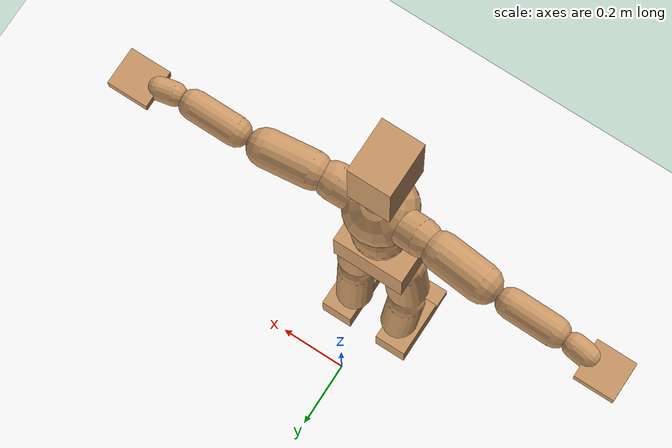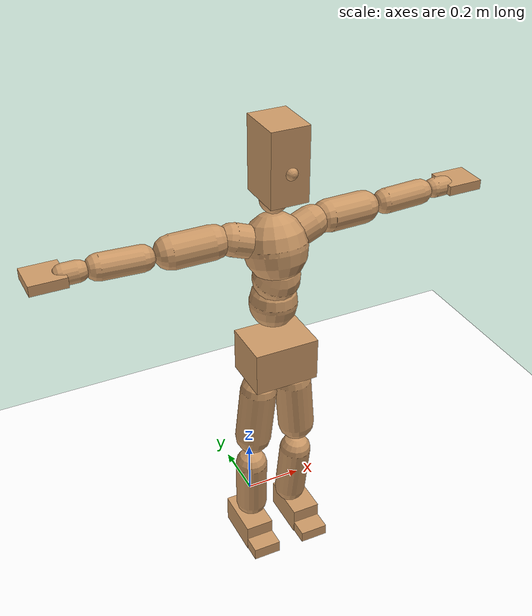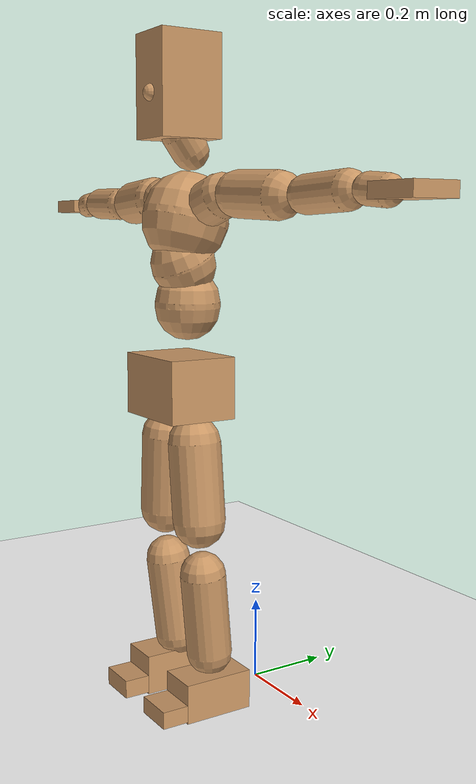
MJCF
<mujoco model="humanoid">
  <option integrator="implicitfast" />

  <visual>
    <global offwidth="1280" offheight="960" />
    <headlight active="1" ambient="0.34 0.34 0.34" diffuse="0.5 0.5 0.5" />
  </visual>

  <default>
    <joint damping="2" stiffness="2" armature="0.01" limited="true" solimplimit="0 .99 .01" />
    <geom condim="1" friction="0.7 0.005 0.0001" solimp=".99 .99 .003" solref="0.015 1" margin="0.001" rgba="0.8 0.6 .4 1" />
    <default class="smplcontact">
      <geom condim="3" friction="1. 0.005 0.0001" solref="0.015 1" solimp="0.98 0.98 0.001" priority="1" />
    </default>
    <default class="stiff_medium">
      <joint stiffness="10" />
    </default>
    <default class="stiff_medium_higher">
      <joint stiffness="50" />
    </default>
    <default class="stiff_high">
      <joint stiffness="100" />
    </default>
  </default>

  <asset>
    <texture type="skybox" builtin="gradient" rgb1="0.99 0.99 0.99" rgb2="0.608 0.828 0.892" width="100" />
    <texture builtin="flat" height="1278" mark="cross" markrgb="1 1 1" name="texgeom" random="0.01" rgb1="0.8 0.6 0.4" rgb2="0.8 0.6 0.4" type="cube" width="127" />
    <texture name="texplane" type="2d" builtin="checker" markrgb="1 1 1" rgb1="0.756 0.772 0.76" rgb2="0.6 0.6 0.6" width="100" height="100" />
    <material name="MatPlane" reflectance="0.5" texture="texplane" texrepeat="1 1" texuniform="true" />
    <material name="geom" texture="texgeom" texuniform="true" />
  </asset>

  <worldbody>
    <light name="tracking_light" pos="0 0 7" dir="0 0 -1" directional="true" cutoff="100" exponent="1" diffuse="1 1 1" specular="0.1 0.1 0.1" mode="trackcom" />
    <camera name="back" pos="0 3 2.4" xyaxes="-1 0 0 0 -1 2" mode="trackcom" />
    <camera name="side" pos="-3 0 2.4" xyaxes="0 -1 0 1 0 2" mode="trackcom" />
    <camera name="front_side" pos="-2.8 -2.8 0.8" xyaxes="0.5 -0.5 0 0.1 0.1 1" mode="trackcom" />
    <geom condim="3" name="floor" pos="0 0 0" rgba="1 1 1 1" size="100 100 .2" type="plane" material="MatPlane" />
    <body name="Pelvis" pos="-0.0018 -0.2233 0.781142" euler="90 0 0">
      <site name="Pelvis" size="0.01" />
      <freejoint name="Pelvis" />
      <geom type="box" pos="-0.0000 -0.0121 -0.0055" size="0.1069 0.0722 0.083" quat="1.0000 0.0000 0.0000 0.0000" density="3165.830099" name="Pelvis" />
      <body name="L_Hip" pos="0.0573375 -0.075405 -0.00561">
        <joint name="L_Hip_x" type="hinge" pos="0 0 0" axis="1 0 0" stiffness="7.284484693877551" range="-160.0 22.92" class="stiff_medium" damping="10.06587348147365" armature="0.0061818943932342"/>
        <joint name="L_Hip_y" type="hinge" pos="0 0 0" axis="0 1 0" stiffness="7.313235714285716" range="-70.0 70.0" class="stiff_medium" damping="7.549664986125334" armature="0.007793737769368998"/>
        <joint name="L_Hip_z" type="hinge" pos="0 0 0" axis="0 0 1" stiffness="7.310773571428571" range="-28.65 90.0" class="stiff_medium" damping="6.721345290697305" armature="0.006179439436249844"/>
        <geom type="capsule" density="2040.816327" fromto="0.0056925 -0.061875 -0.0007425 0.022605 -0.247665 -0.00297" size="0.0615" name="L_Hip" />
        <body name="L_Knee" pos="0.0282975 -0.30954 -0.0037125">
          <joint name="L_Knee_x" type="hinge" pos="0 0 0" axis="1 0 0" range="-5.16 171.89" damping="5.534207921880252" armature="0.006424124457273173" stiffness="1.4898653469387755"/>
          <joint name="L_Knee_y" type="hinge" pos="0 0 0" axis="0 1 0" range="-4.58 6.88" damping="6.170387107135364" armature="0.008092229423658386" stiffness="1.4703023673469389"/>
          <joint name="L_Knee_z" type="hinge" pos="0 0 0" axis="0 0 1" range="-6.88 4.58" damping="5.544825365426908" armature="0.006411660466594631" stiffness="1.498494836734694"/>
          <geom type="capsule" density="1234.567901" fromto="-0.0022275 -0.06567 -0.0071775 -0.0089925 -0.26268 -0.028875" size="0.0541" name="L_Knee" />
          <body name="L_Ankle" pos="-0.01122 -0.32835 -0.0360525">
            <joint name="L_Ankle_x" type="hinge" pos="0 0 0" axis="1 0 0" range="-45.84 45.84" class="stiff_medium" damping="4.8436641795360975" armature="0.00789936420949283" stiffness="8.249989795918367"/>
            <joint name="L_Ankle_y" type="hinge" pos="0 0 0" axis="0 1 0" range="-74.48 22.92" class="stiff_medium" damping="2.4337826757357233" armature="0.00797751189460749" stiffness="8.249993775510205"/>
            <joint name="L_Ankle_z" type="hinge" pos="0 0 0" axis="0 0 1" range="-4.58 4.58" class="stiff_medium" damping="5.021225950040148" armature="0.008489127960052722" stiffness="8.25"/>
            <geom type="box" pos="0.0192225 -0.0197175 0.019965" size="0.0483 0.0464 0.085" quat="1.0000 0.0000 0.0000 0.0000" density="449.071558" name="L_Ankle" class="smplcontact" />
            <body name="L_Toe" pos="0.02178 -0.046035 0.0984225">
              <joint name="L_Toe_x" type="hinge" pos="0 0 0" axis="1 0 0" range="-91.67 22.92" armature="0.008785774857877458" damping="1.7027347718008115" stiffness="1.6500000000000001"/>
              <joint name="L_Toe_y" type="hinge" pos="0 0 0" axis="0 1 0" range="-4.58 4.58" armature="0.009144480362282688" damping="1.737146660346583" stiffness="1.6500000000000001"/>
              <joint name="L_Toe_z" type="hinge" pos="0 0 0" axis="0 0 1" range="-4.58 4.58" armature="0.009869763584953504" damping="1.8047221345776907" stiffness="1.6500000000000001"/>
              <geom type="box" pos="-0.002475 0.0045375 0.02046" size="0.0478 0.02 0.0496" quat="1.0000 0.0000 0.0000 0.0000" density="423.206892" name="L_Toe" class="smplcontact" />
            </body>
          </body>
        </body>
      </body>
      <body name="R_Hip" pos="-0.0558525 -0.0746625 -0.0035475">
        <joint name="R_Hip_x" type="hinge" pos="0 0 0" axis="1 0 0" stiffness="7.284484693877551" range="-160.0 22.92" class="stiff_medium" damping="10.06587348147365" armature="0.0061818943932342"/>
        <joint name="R_Hip_y" type="hinge" pos="0 0 0" axis="0 1 0" stiffness="7.313235714285716" range="-70.0 70.0" class="stiff_medium" damping="7.549664986125334" armature="0.007793737769368998"/>
        <joint name="R_Hip_z" type="hinge" pos="0 0 0" axis="0 0 1" stiffness="7.310773571428571" range="-90.0 28.65" class="stiff_medium" damping="6.721345290697305" armature="0.006179439436249844"/>
        <geom type="capsule" density="2040.816327" fromto="-0.0063525 -0.0631125 -0.001485 -0.025245 -0.252532 -0.0058575" size="0.0606" name="R_Hip" />
        <body name="R_Knee" pos="-0.0315975 -0.315645 -0.0073425">
          <joint name="R_Knee_x" type="hinge" pos="0 0 0" axis="1 0 0" range="-5.16 171.89" damping="5.534207921880252" armature="0.006424124457273173" stiffness="1.4898653469387755"/>
          <joint name="R_Knee_y" type="hinge" pos="0 0 0" axis="0 1 0" range="-6.88 4.58" damping="6.170387107135364" armature="0.008092229423658386" stiffness="1.4703023673469389"/>
          <joint name="R_Knee_z" type="hinge" pos="0 0 0" axis="0 0 1" range="-4.58 6.88" damping="5.544825365426908" armature="0.006411660466594631" stiffness="1.498494836734694"/>
          <geom type="capsule" density="1234.567901" fromto="0.00264 -0.0657525 -0.0070125 0.010395 -0.262927 -0.027885" size="0.0541" name="R_Knee" />
          <body name="R_Ankle" pos="0.013035 -0.32868 -0.0348975">
            <joint name="R_Ankle_x" type="hinge" pos="0 0 0" axis="1 0 0" range="-45.84 45.84" class="stiff_medium" damping="4.8436641795360975" armature="0.00789936420949283" stiffness="8.249989795918367"/>
            <joint name="R_Ankle_y" type="hinge" pos="0 0 0" axis="0 1 0" range="-22.92 74.48" class="stiff_medium" damping="2.4337826757357233" armature="0.00797751189460749" stiffness="8.249993775510205"/>
            <joint name="R_Ankle_z" type="hinge" pos="0 0 0" axis="0 0 1" range="-4.58 4.58" class="stiff_medium" damping="5.021225950040148" armature="0.008489127960052722" stiffness="8.25"/>
            <geom type="box" pos="-0.01749 -0.014355 0.02112" size="0.0483 0.0478 0.0865" quat="1.0000 0.0000 0.0000 0.0000" density="434.700981" name="R_Ankle" class="smplcontact" />
            <body name="R_Toe" pos="-0.020955 -0.0396825 0.101722">
              <joint name="R_Toe_x" type="hinge" pos="0 0 0" axis="1 0 0" range="-91.67 22.92" armature="0.008785774857877458" damping="1.7027347718008115" stiffness="1.6500000000000001"/>
              <joint name="R_Toe_y" type="hinge" pos="0 0 0" axis="0 1 0" range="-4.58 4.58" armature="0.009144480362282688" damping="1.737146660346583" stiffness="1.6500000000000001"/>
              <joint name="R_Toe_z" type="hinge" pos="0 0 0" axis="0 0 1" range="-4.58 4.58" armature="0.009869763584953504" damping="1.8047221345776907" stiffness="1.6500000000000001"/>
              <geom type="box" pos="0.003465 0.0037125 0.0187275" size="0.0479 0.0216 0.0493" quat="1.0000 0.0000 0.0000 0.0000" density="407.384095" name="R_Toe" class="smplcontact" />
            </body>
          </body>
        </body>
      </body>
      <body name="Torso" pos="-0.0025 0.109 -0.0267">
        <joint name="Torso_x" type="hinge" pos="0 0 0" axis="1 0 0" range="-25.78 57.3" class="stiff_medium" damping="14.131683820459585" armature="0.009332413219124517" stiffness="9.510675102040816"/>
        <joint name="Torso_y" type="hinge" pos="0 0 0" axis="0 1 0" range="-57.3 57.3" class="stiff_high" damping="15.871365340543846" armature="0.006574806317363753" stiffness="95.78237959183673"/>
        <joint name="Torso_z" type="hinge" pos="0 0 0" axis="0 0 1" range="-34.38 34.38" class="stiff_high" damping="18.00992649578343" armature="0.008389099202012888" stiffness="96.66039361702128"/>
        <geom type="capsule" density="2040.816327" fromto="0.0025 0.0608 0.0005 0.003 0.0743 0.0006" size="0.0769" name="Torso" />
        <body name="Spine" pos="0.0055 0.1352 0.0011">
          <joint name="Spine_x" type="hinge" pos="0 0 0" axis="1 0 0" stiffness="9.418902448979592" range="-25.78 57.3" class="stiff_medium" damping="13.987063965723799" armature="0.009231458144512313"/>
          <joint name="Spine_y" type="hinge" pos="0 0 0" axis="0 1 0" stiffness="9.40655224489796" range="-57.3 57.3" class="stiff_high" damping="6.279897628538495" armature="0.006550805159229867"/>
          <joint name="Spine_z" type="hinge" pos="0 0 0" axis="0 0 1" stiffness="18.617751428571427" range="-34.38 34.38" class="stiff_high" damping="10.187612849674622" armature="0.007742570009434634"/>
          <geom type="capsule" density="2040.816327" fromto="0.0007 0.0238 0.0114 0.0008 0.0291 0.014" size="0.0755" name="Spine" />
          <body name="Chest" pos="0.0015 0.0529 0.0254">
            <joint name="Chest_x" type="hinge" pos="0 0 0" axis="1 0 0" stiffness="9.186888125000001" range="-25.78 57.3" class="stiff_medium" damping="13.772991083469684" armature="0.009177102593477685"/>
            <joint name="Chest_y" type="hinge" pos="0 0 0" axis="0 1 0" stiffness="8.455795777777777" range="-57.3 57.3" class="stiff_high" damping="5.950059437485742" armature="0.0065419639824612985"/>
            <joint name="Chest_z" type="hinge" pos="0 0 0" axis="0 0 1" stiffness="18.543581224489795" range="-34.38 34.38" class="stiff_high" damping="9.98038773652912" armature="0.007460513497425806"/>
            <geom type="capsule" density="2040.816327" fromto="-0.0009 0.0682 -0.0173 -0.001 0.0833 -0.0212" size="0.1002" name="Chest" />
            <body name="Neck" pos="-0.0028 0.2139 -0.0429">
              <joint name="Neck_x" type="hinge" pos="0 0 0" axis="1 0 0" range="-28.65 57.3" class="stiff_medium_higher" damping="10.000000000000004" armature="0.010000000000000009" stiffness="50.0"/>
              <joint name="Neck_y" type="hinge" pos="0 0 0" axis="0 1 0" range="-40.11 40.11" class="stiff_medium_higher" damping="10.0" armature="0.010000000000000002" stiffness="50.0"/>
              <joint name="Neck_z" type="hinge" pos="0 0 0" axis="0 0 1" range="-40.11 40.11" class="stiff_medium_higher" damping="10.000000000000002" armature="0.010000000000000005" stiffness="50.0"/>
              <geom type="capsule" density="1000" fromto="0.001 0.013 0.0103 0.0041 0.052 0.0411" size="0.0436" name="Neck" />
              <body name="Head" pos="0.0052 0.065 0.0513">
                <joint name="Head_x" type="hinge" pos="0 0 0" axis="1 0 0" range="-28.65 57.3" class="stiff_medium_higher" damping="2.0000000000000044" armature="0.010000000000000045" stiffness="50.0"/>
                <joint name="Head_y" type="hinge" pos="0 0 0" axis="0 1 0" range="-40.11 40.11" class="stiff_medium_higher" damping="2.0" armature="0.010000000000000002" stiffness="50.0"/>
                <joint name="Head_z" type="hinge" pos="0 0 0" axis="0 0 1" range="-40.11 40.11" class="stiff_medium_higher" damping="2.0000000000000027" armature="0.010000000000000026" stiffness="50.0"/>
                <geom type="box" pos="-0.0042 0.0876 -0.0116" size="0.0606 0.1154 0.076" quat="1.0000 0.0000 0.0000 0.0000" density="1018.069894" name="Head" />
                <geom type="capsule" name="nose" size="0.02 0.01" pos="0 0.07 0.05" quat="1 0 0 0" mass="0" contype="0" conaffinity="0" />
              </body>
            </body>
            <body name="L_Thorax" pos="0.066192 0.102228 -0.028644">
              <joint name="L_Thorax_x" type="hinge" pos="0 0 0" axis="1 0 0" range="-10.89 4.58" class="stiff_medium_higher" damping="15.15623785030517" armature="0.007575461639558446" stiffness="37.90388571428572"/>
              <joint name="L_Thorax_y" type="hinge" pos="0 0 0" axis="0 1 0" range="-28.65 17.19" class="stiff_medium_higher" damping="13.949862139616407" armature="0.006446618287421469" stiffness="37.73270051020409"/>
              <joint name="L_Thorax_z" type="hinge" pos="0 0 0" axis="0 0 1" range="-31.51 40.11" class="stiff_medium_higher" damping="13.949106858154831" armature="0.006445596716264251" stiffness="37.7345943877551"/>
              <geom type="capsule" density="1000" fromto="0.015288 0.005124 -0.001512 0.061152 0.020496 -0.005964" size="0.0521" name="L_Thorax" />
              <body name="L_Shoulder" pos="0.07644 0.02562 -0.007476">
                <joint name="L_Shoulder_x" type="hinge" pos="0 0 0" axis="1 0 0" range="-97.4 97.4" class="stiff_medium" damping="4.682098203123426" armature="0.00800615926370481" stiffness="7.605964795918368"/>
                <joint name="L_Shoulder_y" type="hinge" pos="0 0 0" axis="0 1 0" range="-108.86 80.21" class="stiff_medium" damping="4.199980401065961" armature="0.006482044540532612" stiffness="7.5592727551020396"/>
                <joint name="L_Shoulder_z" type="hinge" pos="0 0 0" axis="0 0 1" range="-97.4 85.94" class="stiff_medium" damping="4.200301494683375" armature="0.0064806745845409" stiffness="7.562026836734694"/>
                <geom type="capsule" density="1000" fromto="0.043596 -0.002184 -0.00462 0.174468 -0.008568 -0.01848" size="0.0517" name="L_Shoulder" />
                <body name="L_Elbow" pos="0.218064 -0.010752 -0.0231">
                  <joint name="L_Elbow_x" type="hinge" pos="0 0 0" axis="1 0 0" range="-17.19 4.58" damping="4.097505989306468" armature="0.008718135652777615" stiffness="1.5406555714285717"/>
                  <joint name="L_Elbow_y" type="hinge" pos="0 0 0" axis="0 1 0" range="-180.0 17.19" damping="3.5796626186842713" armature="0.006655704710812384" stiffness="1.540210693877551"/>
                  <joint name="L_Elbow_z" type="hinge" pos="0 0 0" axis="0 0 1" range="-100.84 4.58" damping="3.5786071196653872" armature="0.006648513131290598" stiffness="1.5409675714285713"/>
                  <geom type="capsule" density="1000" fromto="0.041832 0.001512 -0.000168 0.167496 0.006048 -0.000756" size="0.0405" name="L_Elbow" />
                  <body name="L_Wrist" pos="0.209328 0.00756 -0.001008">
                    <joint name="L_Wrist_x" type="hinge" pos="0 0 0" axis="1 0 0" range="-180.0 22.92" armature="0.008979467277695205" damping="1.7116374044059766" stiffness="1.631334306122449"/>
                    <joint name="L_Wrist_y" type="hinge" pos="0 0 0" axis="0 1 0" range="-17.19 17.19" armature="0.007289476819675318" damping="1.538799148694684" stiffness="1.6241925714285714"/>
                    <joint name="L_Wrist_z" type="hinge" pos="0 0 0" axis="0 0 1" range="-22.92 22.92" armature="0.007193887363336879" damping="1.530031413272078" stiffness="1.627073102040816"/>
                    <geom type="capsule" density="1000" fromto="0.014112 -0.001344 -0.00252 0.056448 -0.00546 -0.01008" size="0.0318" name="L_Wrist" class="smplcontact" />
                    <body name="L_Hand" pos="0.07056 -0.006888 -0.012516">
                      <joint name="L_Hand_x" type="hinge" pos="0 0 0" axis="1 0 0" range="-17.19 17.19" armature="0.009871741223427261" damping="1.8212372308602633" stiffness="1.6800000000000002"/>
                      <joint name="L_Hand_y" type="hinge" pos="0 0 0" axis="0 1 0" range="-51.57 51.57" armature="0.00844888704934872" damping="1.6848816126307422" stiffness="1.6800000000000002"/>
                      <joint name="L_Hand_z" type="hinge" pos="0 0 0" axis="0 0 1" range="-91.67 91.67" armature="0.00806960582867544" damping="1.6466291502445072" stiffness="1.6800000000000002"/>
                      <geom type="box" pos="0.041412 0.00084 -0.004872" size="0.0585 0.0158 0.0538" quat="1.0000 0.0000 0.0000 0.0000" density="400.552564" name="L_Hand" class="smplcontact" />
                    </body>
                  </body>
                </body>
              </body>
            </body>
            <body name="R_Thorax" pos="-0.068712 0.099792 -0.032424">
              <joint name="R_Thorax_x" type="hinge" pos="0 0 0" axis="1 0 0" range="-10.89 4.58" class="stiff_medium_higher" damping="15.15623785030517" armature="0.007575461639558446" stiffness="37.90388571428572"/>
              <joint name="R_Thorax_y" type="hinge" pos="0 0 0" axis="0 1 0" range="-17.19 28.65" class="stiff_medium_higher" damping="13.949862139616407" armature="0.006446618287421469" stiffness="37.73270051020409"/>
              <joint name="R_Thorax_z" type="hinge" pos="0 0 0" axis="0 0 1" range="-40.11 31.51" class="stiff_medium_higher" damping="13.949106858154831" armature="0.006445596716264251" stiffness="37.7345943877551"/>
              <geom type="capsule" density="1000" fromto="-0.016128 0.00546 -0.001512 -0.064512 0.02184 -0.006132" size="0.0511" name="R_Thorax" />
              <body name="R_Shoulder" pos="-0.08064 0.027384 -0.007644">
                <joint name="R_Shoulder_x" type="hinge" pos="0 0 0" axis="1 0 0" range="-97.4 97.4" class="stiff_medium" damping="4.682098203123426" armature="0.00800615926370481" stiffness="7.605964795918368"/>
                <joint name="R_Shoulder_y" type="hinge" pos="0 0 0" axis="0 1 0" range="-80.21 108.86" class="stiff_medium" damping="4.199980401065961" armature="0.006482044540532612" stiffness="7.5592727551020396"/>
                <joint name="R_Shoulder_z" type="hinge" pos="0 0 0" axis="0 0 1" range="-85.94 97.4" class="stiff_medium" damping="4.200301494683375" armature="0.0064806745845409" stiffness="7.562026836734694"/>
                <geom type="capsule" density="1000" fromto="-0.042588 -0.002268 -0.003612 -0.17052 -0.008988 -0.014364" size="0.0531" name="R_Shoulder" />
                <body name="R_Elbow" pos="-0.213108 -0.011172 -0.017976">
                  <joint name="R_Elbow_x" type="hinge" pos="0 0 0" axis="1 0 0" range="-17.19 4.58" damping="4.097505989306468" armature="0.008718135652777615" stiffness="1.5406555714285717"/>
                  <joint name="R_Elbow_y" type="hinge" pos="0 0 0" axis="0 1 0" range="-17.19 180.0" damping="3.5796626186842713" armature="0.006655704710812384" stiffness="1.540210693877551"/>
                  <joint name="R_Elbow_z" type="hinge" pos="0 0 0" axis="0 0 1" range="-4.58 100.84" damping="3.5786071196653872" armature="0.006648513131290598" stiffness="1.5409675714285713"/>
                  <geom type="capsule" density="1000" fromto="-0.042924 0.001344 -0.000924 -0.171528 0.005208 -0.003696" size="0.0408" name="R_Elbow" />
                  <body name="R_Wrist" pos="-0.214452 0.006552 -0.004704">
                    <joint name="R_Wrist_x" type="hinge" pos="0 0 0" axis="1 0 0" range="-180.0 22.92" armature="0.008979467277695205" damping="1.7116374044059766" stiffness="1.631334306122449"/>
                    <joint name="R_Wrist_y" type="hinge" pos="0 0 0" axis="0 1 0" range="-17.19 17.19" armature="0.007289476819675318" damping="1.538799148694684" stiffness="1.6241925714285714"/>
                    <joint name="R_Wrist_z" type="hinge" pos="0 0 0" axis="0 0 1" range="-22.92 22.92" armature="0.007193887363336879" damping="1.530031413272078" stiffness="1.627073102040816"/>
                    <geom type="capsule" density="1000" fromto="-0.014196 -0.001008 -0.001764 -0.056868 -0.004116 -0.006972" size="0.0326" name="R_Wrist" class="smplcontact" />
                    <body name="R_Hand" pos="-0.071064 -0.005124 -0.008652">
                      <joint name="R_Hand_x" type="hinge" pos="0 0 0" axis="1 0 0" range="-17.19 17.19" armature="0.009871741223427261" damping="1.8212372308602633" stiffness="1.6800000000000002"/>
                      <joint name="R_Hand_y" type="hinge" pos="0 0 0" axis="0 1 0" range="-51.57 51.57" armature="0.00844888704934872" damping="1.6848816126307422" stiffness="1.6800000000000002"/>
                      <joint name="R_Hand_z" type="hinge" pos="0 0 0" axis="0 0 1" range="-91.67 91.67" armature="0.00806960582867544" damping="1.6466291502445072" stiffness="1.6800000000000002"/>
                      <geom type="box" pos="-0.038808 -0.000756 -0.006636" size="0.0569 0.0164 0.0546" quat="1.0000 0.0000 0.0000 0.0000" density="403.679611" name="R_Hand" class="smplcontact" />
                    </body>
                  </body>
                </body>
              </body>
            </body>
          </body>
        </body>
      </body>
    </body>
  </worldbody>
  <actuator>
    <general name="L_Hip_x" joint="L_Hip_x" biastype="affine" gainprm="209.3051454007801" biasprm="-156.85299219078797 -131.12072448979592 -1.3421164641964867" ctrllimited="true" ctrlrange="-1 1" forcerange="-262.24144897959184 262.24144897959184" />
    <general name="L_Hip_y" joint="L_Hip_y" biastype="affine" gainprm="160.82645315779354" biasprm="0.0 -131.63824285714287 -1.5099329972250668" ctrllimited="true" ctrlrange="-1 1" forcerange="-263.27648571428574 263.27648571428574" />
    <general name="L_Hip_z" joint="L_Hip_z" biastype="affine" gainprm="136.25453086762656" biasprm="70.45272202889919 -131.59392428571428 -1.344269058139461" ctrllimited="true" ctrlrange="-1 1" forcerange="-263.18784857142856 263.18784857142856" />
    <general name="L_Knee_x" joint="L_Knee_x" biastype="affine" gainprm="207.17284564891307" biasprm="195.09702657465843 -134.0878812244898 -1.383551980470063" ctrllimited="true" ctrlrange="-1 1" forcerange="-268.1757624489796 268.1757624489796" />
    <general name="L_Knee_y" joint="L_Knee_y" biastype="affine" gainprm="13.233696046803741" biasprm="2.655977391592374 -132.32721306122448 -1.542596776783841" ctrllimited="true" ctrlrange="-1 1" forcerange="-264.65442612244897 264.65442612244897" />
    <general name="L_Knee_z" joint="L_Knee_z" biastype="affine" gainprm="13.48744696156258" biasprm="-2.706904713053572 -134.86453530612246 -1.386206341356727" ctrllimited="true" ctrlrange="-1 1" forcerange="-269.7290706122449 269.7290706122449" />
    <general name="L_Ankle_x" joint="L_Ankle_x" biastype="affine" gainprm="59.4043020119298" biasprm="0.0 -74.2499081632653 -1.6145547265120326" ctrllimited="true" ctrlrange="-1 1" forcerange="-148.4998163265306 148.4998163265306" />
    <general name="L_Ankle_y" joint="L_Ankle_y" biastype="affine" gainprm="63.110621803836175" biasprm="-33.40845647028535 -74.24994397959185 -1.6225217838238155" ctrllimited="true" ctrlrange="-1 1" forcerange="-148.4998879591837 148.4998879591837" />
    <general name="L_Ankle_z" joint="L_Ankle_z" biastype="affine" gainprm="5.9352539207945165" biasprm="0.0 -74.25 -1.673741983346716" ctrllimited="true" ctrlrange="-1 1" forcerange="-148.5 148.5" />
    <general name="L_Toe_x" joint="L_Toe_x" biastype="affine" gainprm="59.399191858850976" biasprm="-35.63744166415921 -59.400000000000006 -0.6810939087203246" ctrllimited="true" ctrlrange="-1 1" forcerange="-118.80000000000001 118.80000000000001" />
    <general name="L_Toe_y" joint="L_Toe_y" biastype="affine" gainprm="4.748203136635614" biasprm="0.0 -59.400000000000006 -0.6948586641386333" ctrllimited="true" ctrlrange="-1 1" forcerange="-118.80000000000001 118.80000000000001" />
    <general name="L_Toe_z" joint="L_Toe_z" biastype="affine" gainprm="4.748203136635614" biasprm="0.0 -59.400000000000006 -0.7218888538310764" ctrllimited="true" ctrlrange="-1 1" forcerange="-118.80000000000001 118.80000000000001" />
    <general name="R_Hip_x" joint="R_Hip_x" biastype="affine" gainprm="209.3051454007801" biasprm="-156.85299219078797 -131.12072448979592 -1.3421164641964867" ctrllimited="true" ctrlrange="-1 1" forcerange="-262.24144897959184 262.24144897959184" />
    <general name="R_Hip_y" joint="R_Hip_y" biastype="affine" gainprm="160.82645315779354" biasprm="0.0 -131.63824285714287 -1.5099329972250668" ctrllimited="true" ctrlrange="-1 1" forcerange="-263.27648571428574 263.27648571428574" />
    <general name="R_Hip_z" joint="R_Hip_z" biastype="affine" gainprm="136.25453086762656" biasprm="-70.45272202889919 -131.59392428571428 -1.344269058139461" ctrllimited="true" ctrlrange="-1 1" forcerange="-263.18784857142856 263.18784857142856" />
    <general name="R_Knee_x" joint="R_Knee_x" biastype="affine" gainprm="207.17284564891307" biasprm="195.09702657465843 -134.0878812244898 -1.383551980470063" ctrllimited="true" ctrlrange="-1 1" forcerange="-268.1757624489796 268.1757624489796" />
    <general name="R_Knee_y" joint="R_Knee_y" biastype="affine" gainprm="13.233696046803741" biasprm="-2.655977391592374 -132.32721306122448 -1.542596776783841" ctrllimited="true" ctrlrange="-1 1" forcerange="-264.65442612244897 264.65442612244897" />
    <general name="R_Knee_z" joint="R_Knee_z" biastype="affine" gainprm="13.48744696156258" biasprm="2.706904713053572 -134.86453530612246 -1.386206341356727" ctrllimited="true" ctrlrange="-1 1" forcerange="-269.7290706122449 269.7290706122449" />
    <general name="R_Ankle_x" joint="R_Ankle_x" biastype="affine" gainprm="59.4043020119298" biasprm="0.0 -74.2499081632653 -1.6145547265120326" ctrllimited="true" ctrlrange="-1 1" forcerange="-148.4998163265306 148.4998163265306" />
    <general name="R_Ankle_y" joint="R_Ankle_y" biastype="affine" gainprm="63.110621803836175" biasprm="33.40845647028535 -74.24994397959185 -1.6225217838238155" ctrllimited="true" ctrlrange="-1 1" forcerange="-148.4998879591837 148.4998879591837" />
    <general name="R_Ankle_z" joint="R_Ankle_z" biastype="affine" gainprm="5.9352539207945165" biasprm="0.0 -74.25 -1.673741983346716" ctrllimited="true" ctrlrange="-1 1" forcerange="-148.5 148.5" />
    <general name="R_Toe_x" joint="R_Toe_x" biastype="affine" gainprm="59.399191858850976" biasprm="-35.63744166415921 -59.400000000000006 -0.6810939087203246" ctrllimited="true" ctrlrange="-1 1" forcerange="-118.80000000000001 118.80000000000001" />
    <general name="R_Toe_y" joint="R_Toe_y" biastype="affine" gainprm="4.748203136635614" biasprm="0.0 -59.400000000000006 -0.6948586641386333" ctrllimited="true" ctrlrange="-1 1" forcerange="-118.80000000000001 118.80000000000001" />
    <general name="R_Toe_z" joint="R_Toe_z" biastype="affine" gainprm="4.748203136635614" biasprm="0.0 -59.400000000000006 -0.7218888538310764" ctrllimited="true" ctrlrange="-1 1" forcerange="-118.80000000000001 118.80000000000001" />
    <general name="Torso_x" joint="Torso_x" biastype="affine" gainprm="165.487977130421" biasprm="62.78503898833496 -228.25620244897956 -3.768449018789223" ctrllimited="true" ctrlrange="-1 1" forcerange="-342.38430367346933 342.38430367346933" />
    <general name="Torso_y" joint="Torso_y" biastype="affine" gainprm="229.89464413276428" biasprm="0.0 -229.87771102040816 -3.174273068108769" ctrllimited="true" ctrlrange="-1 1" forcerange="-344.81656653061225 344.81656653061225" />
    <general name="Torso_z" joint="Torso_z" biastype="affine" gainprm="139.20121980898412" biasprm="0.0 -231.9849446808511 -3.6019852991566856" ctrllimited="true" ctrlrange="-1 1" forcerange="-347.97741702127666 347.97741702127666" />
    <general name="Spine_x" joint="Spine_x" biastype="affine" gainprm="163.8911114454882" biasprm="62.17919875736383 -226.05365877551023 -3.729883724193013" ctrllimited="true" ctrlrange="-1 1" forcerange="-339.08048816326533 339.08048816326533" />
    <general name="Spine_y" joint="Spine_y" biastype="affine" gainprm="225.77388347129525" biasprm="0.0 -225.75725387755105 -3.1399488142692475" ctrllimited="true" ctrlrange="-1 1" forcerange="-338.63588081632656 338.63588081632656" />
    <general name="Spine_z" joint="Spine_z" biastype="affine" gainprm="134.05768443411515" biasprm="0.0 -223.41301714285714 -3.395870949891541" ctrllimited="true" ctrlrange="-1 1" forcerange="-335.1195257142857 335.1195257142857" />
    <general name="Chest_x" joint="Chest_x" biastype="affine" gainprm="159.8540077984058" biasprm="60.647548456978214 -220.485315 -3.6727976222585825" ctrllimited="true" ctrlrange="-1 1" forcerange="-330.7279725 330.7279725" />
    <general name="Chest_y" joint="Chest_y" biastype="affine" gainprm="202.95404744331802" biasprm="0.0 -202.93909866666664 -2.975029718742871" ctrllimited="true" ctrlrange="-1 1" forcerange="-304.40864799999997 304.40864799999997" />
    <general name="Chest_z" joint="Chest_z" biastype="affine" gainprm="133.52361962766756" biasprm="0.0 -222.52297469387756 -3.3267959121763737" ctrllimited="true" ctrlrange="-1 1" forcerange="-333.7844620408163 333.7844620408163" />
    <general name="Neck_x" joint="Neck_x" biastype="affine" gainprm="27.00198885760427" biasprm="9.000662952534757 -36.0 -0.8000000000000004" ctrllimited="true" ctrlrange="-1 1" forcerange="-72.0 72.0" />
    <general name="Neck_y" joint="Neck_y" biastype="affine" gainprm="25.20185626709732" biasprm="0.0 -36.0 -0.8" ctrllimited="true" ctrlrange="-1 1" forcerange="-72.0 72.0" />
    <general name="Neck_z" joint="Neck_z" biastype="affine" gainprm="25.20185626709732" biasprm="0.0 -36.0 -0.8000000000000003" ctrllimited="true" ctrlrange="-1 1" forcerange="-72.0 72.0" />
    <general name="Head_x" joint="Head_x" biastype="affine" gainprm="18.001325905069514" biasprm="6.000441968356505 -24.0 -0.8000000000000018" ctrllimited="true" ctrlrange="-1 1" forcerange="-48.0 48.0" />
    <general name="Head_y" joint="Head_y" biastype="affine" gainprm="16.801237511398213" biasprm="0.0 -24.0 -0.8" ctrllimited="true" ctrlrange="-1 1" forcerange="-48.0 48.0" />
    <general name="Head_z" joint="Head_z" biastype="affine" gainprm="16.801237511398213" biasprm="0.0 -24.0 -0.8000000000000012" ctrllimited="true" ctrlrange="-1 1" forcerange="-48.0 48.0" />
    <general name="L_Thorax_x" joint="L_Thorax_x" biastype="affine" gainprm="12.280969739478568" biasprm="-5.009238465165469 -90.96932571428573 -1.2124990280244137" ctrllimited="true" ctrlrange="-1 1" forcerange="-181.93865142857146 181.93865142857146" />
    <general name="L_Thorax_y" joint="L_Thorax_y" biastype="affine" gainprm="36.22606075533688" biasprm="-9.05651518883422 -90.55848122448981 -1.1159889711693125" ctrllimited="true" ctrlrange="-1 1" forcerange="-181.11696244897962 181.11696244897962" />
    <general name="L_Thorax_z" joint="L_Thorax_z" biastype="affine" gainprm="56.602109398315065" biasprm="6.796678872179692 -90.56302653061225 -1.1159285486523867" ctrllimited="true" ctrlrange="-1 1" forcerange="-181.1260530612245 181.1260530612245" />
    <general name="L_Shoulder_x" joint="L_Shoulder_x" biastype="affine" gainprm="62.06287254676113" biasprm="0.0 -36.50863102040816 -1.2485595208329139" ctrllimited="true" ctrlrange="-1 1" forcerange="-73.01726204081632 73.01726204081632" />
    <general name="L_Shoulder_y" joint="L_Shoulder_y" biastype="affine" gainprm="59.867517445223626" biasprm="-9.071795497993637 -36.284509224489796 -1.1199947736175897" ctrllimited="true" ctrlrange="-1 1" forcerange="-72.56901844897959 72.56901844897959" />
    <general name="L_Shoulder_z" joint="L_Shoulder_z" biastype="affine" gainprm="58.074308943347326" biasprm="-3.6300402557584914 -36.29772881632653 -1.1200803985822334" ctrllimited="true" ctrlrange="-1 1" forcerange="-72.59545763265307 72.59545763265307" />
    <general name="L_Elbow_x" joint="L_Elbow_x" biastype="affine" gainprm="10.536924313633827" biasprm="-6.103381515614268 -55.46360057142858 -0.6556009582890349" ctrllimited="true" ctrlrange="-1 1" forcerange="-110.92720114285716 110.92720114285716" />
    <general name="L_Elbow_y" joint="L_Elbow_y" biastype="affine" gainprm="95.41461321447964" biasprm="-78.77911241670184 -55.44758497959184 -0.5727460189894834" ctrllimited="true" ctrlrange="-1 1" forcerange="-110.89516995918368 110.89516995918368" />
    <general name="L_Elbow_z" joint="L_Elbow_z" biastype="affine" gainprm="51.03479609998754" biasprm="-46.60035545992033 -55.474832571428564 -0.572577139146462" ctrllimited="true" ctrlrange="-1 1" forcerange="-110.94966514285713 110.94966514285713" />
    <general name="L_Wrist_x" joint="L_Wrist_x" biastype="affine" gainprm="17.33270898196524" biasprm="-13.417218248014489 -9.788005836734694 -0.6846549617623907" ctrllimited="true" ctrlrange="-1 1" forcerange="-19.576011673469388 19.576011673469388" />
    <general name="L_Wrist_y" joint="L_Wrist_y" biastype="affine" gainprm="2.923761981087862" biasprm="0.0 -9.74515542857143 -0.6155196594778736" ctrllimited="true" ctrlrange="-1 1" forcerange="-19.49031085714286 19.49031085714286" />
    <general name="L_Wrist_z" joint="L_Wrist_z" biastype="affine" gainprm="3.905263090827888" biasprm="0.0 -9.762438612244896 -0.6120125653088313" ctrllimited="true" ctrlrange="-1 1" forcerange="-19.524877224489792 19.524877224489792" />
    <general name="L_Hand_x" joint="L_Hand_x" biastype="affine" gainprm="3.0242227520516796" biasprm="0.0 -10.080000000000002 -0.7284948923441054" ctrllimited="true" ctrlrange="-1 1" forcerange="-20.160000000000004 20.160000000000004" />
    <general name="L_Hand_y" joint="L_Hand_y" biastype="affine" gainprm="9.072668256155035" biasprm="0.0 -10.080000000000002 -0.6739526450522969" ctrllimited="true" ctrlrange="-1 1" forcerange="-20.160000000000004 20.160000000000004" />
    <general name="L_Hand_z" joint="L_Hand_z" biastype="affine" gainprm="16.127428719056276" biasprm="0.0 -10.080000000000002 -0.658651660097803" ctrllimited="true" ctrlrange="-1 1" forcerange="-20.160000000000004 20.160000000000004" />
    <general name="R_Thorax_x" joint="R_Thorax_x" biastype="affine" gainprm="12.280969739478568" biasprm="-5.009238465165469 -90.96932571428573 -1.2124990280244137" ctrllimited="true" ctrlrange="-1 1" forcerange="-181.93865142857146 181.93865142857146" />
    <general name="R_Thorax_y" joint="R_Thorax_y" biastype="affine" gainprm="36.22606075533688" biasprm="9.056515188834215 -90.55848122448981 -1.1159889711693125" ctrllimited="true" ctrlrange="-1 1" forcerange="-181.11696244897962 181.11696244897962" />
    <general name="R_Thorax_z" joint="R_Thorax_z" biastype="affine" gainprm="56.602109398315065" biasprm="-6.796678872179692 -90.56302653061225 -1.1159285486523867" ctrllimited="true" ctrlrange="-1 1" forcerange="-181.1260530612245 181.1260530612245" />
    <general name="R_Shoulder_x" joint="R_Shoulder_x" biastype="affine" gainprm="62.06287254676113" biasprm="0.0 -36.50863102040816 -1.2485595208329139" ctrllimited="true" ctrlrange="-1 1" forcerange="-73.01726204081632 73.01726204081632" />
    <general name="R_Shoulder_y" joint="R_Shoulder_y" biastype="affine" gainprm="59.867517445223626" biasprm="9.071795497993637 -36.284509224489796 -1.1199947736175897" ctrllimited="true" ctrlrange="-1 1" forcerange="-72.56901844897959 72.56901844897959" />
    <general name="R_Shoulder_z" joint="R_Shoulder_z" biastype="affine" gainprm="58.074308943347326" biasprm="3.6300402557584834 -36.29772881632653 -1.1200803985822334" ctrllimited="true" ctrlrange="-1 1" forcerange="-72.59545763265307 72.59545763265307" />
    <general name="R_Elbow_x" joint="R_Elbow_x" biastype="affine" gainprm="10.536924313633827" biasprm="-6.103381515614268 -55.46360057142858 -0.6556009582890349" ctrllimited="true" ctrlrange="-1 1" forcerange="-110.92720114285716 110.92720114285716" />
    <general name="R_Elbow_y" joint="R_Elbow_y" biastype="affine" gainprm="95.41461321447964" biasprm="78.77911241670184 -55.44758497959184 -0.5727460189894834" ctrllimited="true" ctrlrange="-1 1" forcerange="-110.89516995918368 110.89516995918368" />
    <general name="R_Elbow_z" joint="R_Elbow_z" biastype="affine" gainprm="51.03479609998754" biasprm="46.60035545992032 -55.474832571428564 -0.572577139146462" ctrllimited="true" ctrlrange="-1 1" forcerange="-110.94966514285713 110.94966514285713" />
    <general name="R_Wrist_x" joint="R_Wrist_x" biastype="affine" gainprm="17.33270898196524" biasprm="-13.417218248014489 -9.788005836734694 -0.6846549617623907" ctrllimited="true" ctrlrange="-1 1" forcerange="-19.576011673469388 19.576011673469388" />
    <general name="R_Wrist_y" joint="R_Wrist_y" biastype="affine" gainprm="2.923761981087862" biasprm="0.0 -9.74515542857143 -0.6155196594778736" ctrllimited="true" ctrlrange="-1 1" forcerange="-19.49031085714286 19.49031085714286" />
    <general name="R_Wrist_z" joint="R_Wrist_z" biastype="affine" gainprm="3.905263090827888" biasprm="0.0 -9.762438612244896 -0.6120125653088313" ctrllimited="true" ctrlrange="-1 1" forcerange="-19.524877224489792 19.524877224489792" />
    <general name="R_Hand_x" joint="R_Hand_x" biastype="affine" gainprm="3.0242227520516796" biasprm="0.0 -10.080000000000002 -0.7284948923441054" ctrllimited="true" ctrlrange="-1 1" forcerange="-20.160000000000004 20.160000000000004" />
    <general name="R_Hand_y" joint="R_Hand_y" biastype="affine" gainprm="9.072668256155035" biasprm="0.0 -10.080000000000002 -0.6739526450522969" ctrllimited="true" ctrlrange="-1 1" forcerange="-20.160000000000004 20.160000000000004" />
    <general name="R_Hand_z" joint="R_Hand_z" biastype="affine" gainprm="16.127428719056276" biasprm="0.0 -10.080000000000002 -0.658651660097803" ctrllimited="true" ctrlrange="-1 1" forcerange="-20.160000000000004 20.160000000000004" />
  </actuator>
  <contact>
    <exclude body1="Torso" body2="Chest" />
    <exclude body1="Head" body2="Chest" />
    <exclude body1="R_Knee" body2="R_Toe" />
    <exclude body1="R_Knee" body2="L_Ankle" />
    <exclude body1="R_Knee" body2="L_Toe" />
    <exclude body1="L_Knee" body2="L_Toe" />
    <exclude body1="L_Knee" body2="R_Ankle" />
    <exclude body1="L_Knee" body2="R_Toe" />
    <exclude body1="L_Shoulder" body2="Chest" />
    <exclude body1="R_Shoulder" body2="Chest" />
  </contact>
  <sensor>
    <framelinvel name="sensor_Pelvis_framelinvel" objtype="xbody" objname="Pelvis" />
    <framelinvel name="sensor_L_Hip_framelinvel" objtype="xbody" objname="L_Hip" />
    <framelinvel name="sensor_L_Knee_framelinvel" objtype="xbody" objname="L_Knee" />
    <framelinvel name="sensor_L_Ankle_framelinvel" objtype="xbody" objname="L_Ankle" />
    <framelinvel name="sensor_L_Toe_framelinvel" objtype="xbody" objname="L_Toe" />
    <framelinvel name="sensor_R_Hip_framelinvel" objtype="xbody" objname="R_Hip" />
    <framelinvel name="sensor_R_Knee_framelinvel" objtype="xbody" objname="R_Knee" />
    <framelinvel name="sensor_R_Ankle_framelinvel" objtype="xbody" objname="R_Ankle" />
    <framelinvel name="sensor_R_Toe_framelinvel" objtype="xbody" objname="R_Toe" />
    <framelinvel name="sensor_Torso_framelinvel" objtype="xbody" objname="Torso" />
    <framelinvel name="sensor_Spine_framelinvel" objtype="xbody" objname="Spine" />
    <framelinvel name="sensor_Chest_framelinvel" objtype="xbody" objname="Chest" />
    <framelinvel name="sensor_Neck_framelinvel" objtype="xbody" objname="Neck" />
    <framelinvel name="sensor_Head_framelinvel" objtype="xbody" objname="Head" />
    <framelinvel name="sensor_L_Thorax_framelinvel" objtype="xbody" objname="L_Thorax" />
    <framelinvel name="sensor_L_Shoulder_framelinvel" objtype="xbody" objname="L_Shoulder" />
    <framelinvel name="sensor_L_Elbow_framelinvel" objtype="xbody" objname="L_Elbow" />
    <framelinvel name="sensor_L_Wrist_framelinvel" objtype="xbody" objname="L_Wrist" />
    <framelinvel name="sensor_L_Hand_framelinvel" objtype="xbody" objname="L_Hand" />
    <framelinvel name="sensor_R_Thorax_framelinvel" objtype="xbody" objname="R_Thorax" />
    <framelinvel name="sensor_R_Shoulder_framelinvel" objtype="xbody" objname="R_Shoulder" />
    <framelinvel name="sensor_R_Elbow_framelinvel" objtype="xbody" objname="R_Elbow" />
    <framelinvel name="sensor_R_Wrist_framelinvel" objtype="xbody" objname="R_Wrist" />
    <framelinvel name="sensor_R_Hand_framelinvel" objtype="xbody" objname="R_Hand" />
    <frameangvel name="sensor_Pelvis_frameangvel" objtype="xbody" objname="Pelvis" />
    <frameangvel name="sensor_L_Hip_frameangvel" objtype="xbody" objname="L_Hip" />
    <frameangvel name="sensor_L_Knee_frameangvel" objtype="xbody" objname="L_Knee" />
    <frameangvel name="sensor_L_Ankle_frameangvel" objtype="xbody" objname="L_Ankle" />
    <frameangvel name="sensor_L_Toe_frameangvel" objtype="xbody" objname="L_Toe" />
    <frameangvel name="sensor_R_Hip_frameangvel" objtype="xbody" objname="R_Hip" />
    <frameangvel name="sensor_R_Knee_frameangvel" objtype="xbody" objname="R_Knee" />
    <frameangvel name="sensor_R_Ankle_frameangvel" objtype="xbody" objname="R_Ankle" />
    <frameangvel name="sensor_R_Toe_frameangvel" objtype="xbody" objname="R_Toe" />
    <frameangvel name="sensor_Torso_frameangvel" objtype="xbody" objname="Torso" />
    <frameangvel name="sensor_Spine_frameangvel" objtype="xbody" objname="Spine" />
    <frameangvel name="sensor_Chest_frameangvel" objtype="xbody" objname="Chest" />
    <frameangvel name="sensor_Neck_frameangvel" objtype="xbody" objname="Neck" />
    <frameangvel name="sensor_Head_frameangvel" objtype="xbody" objname="Head" />
    <frameangvel name="sensor_L_Thorax_frameangvel" objtype="xbody" objname="L_Thorax" />
    <frameangvel name="sensor_L_Shoulder_frameangvel" objtype="xbody" objname="L_Shoulder" />
    <frameangvel name="sensor_L_Elbow_frameangvel" objtype="xbody" objname="L_Elbow" />
    <frameangvel name="sensor_L_Wrist_frameangvel" objtype="xbody" objname="L_Wrist" />
    <frameangvel name="sensor_L_Hand_frameangvel" objtype="xbody" objname="L_Hand" />
    <frameangvel name="sensor_R_Thorax_frameangvel" objtype="xbody" objname="R_Thorax" />
    <frameangvel name="sensor_R_Shoulder_frameangvel" objtype="xbody" objname="R_Shoulder" />
    <frameangvel name="sensor_R_Elbow_frameangvel" objtype="xbody" objname="R_Elbow" />
    <frameangvel name="sensor_R_Wrist_frameangvel" objtype="xbody" objname="R_Wrist" />
    <frameangvel name="sensor_R_Hand_frameangvel" objtype="xbody" objname="R_Hand" />
    <subtreelinvel name="Chest_subtreelinvel" body="Chest" />
    <gyro name="Pelvis_gyro" site="Pelvis" />
  </sensor>
</mujoco>
